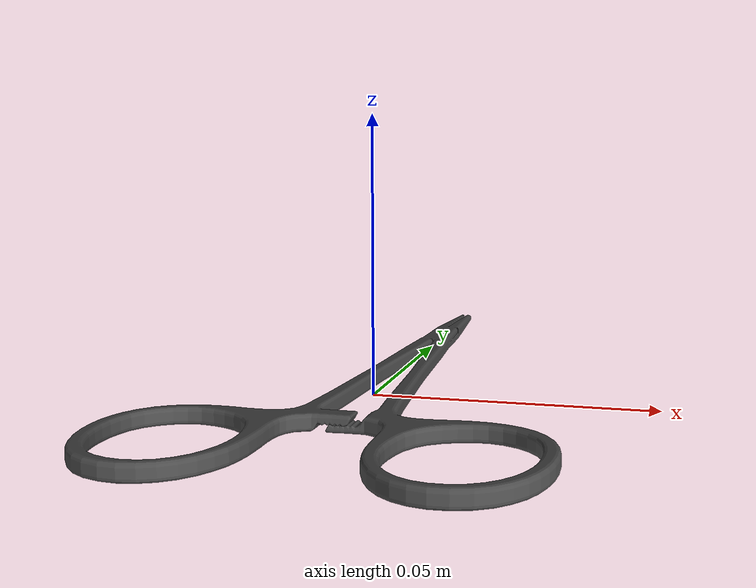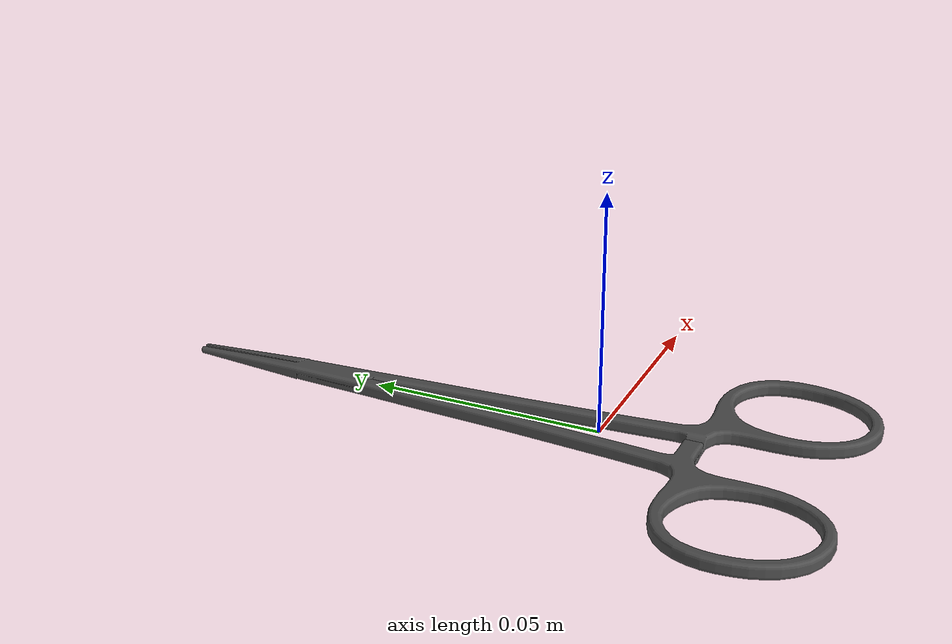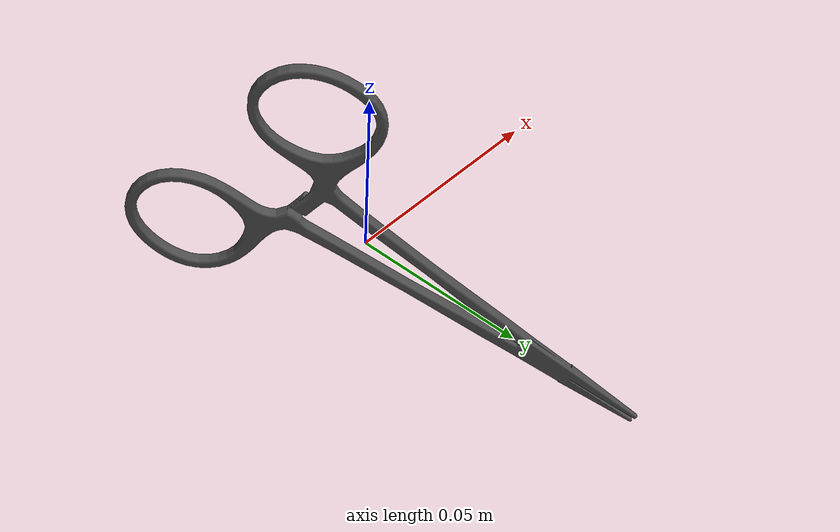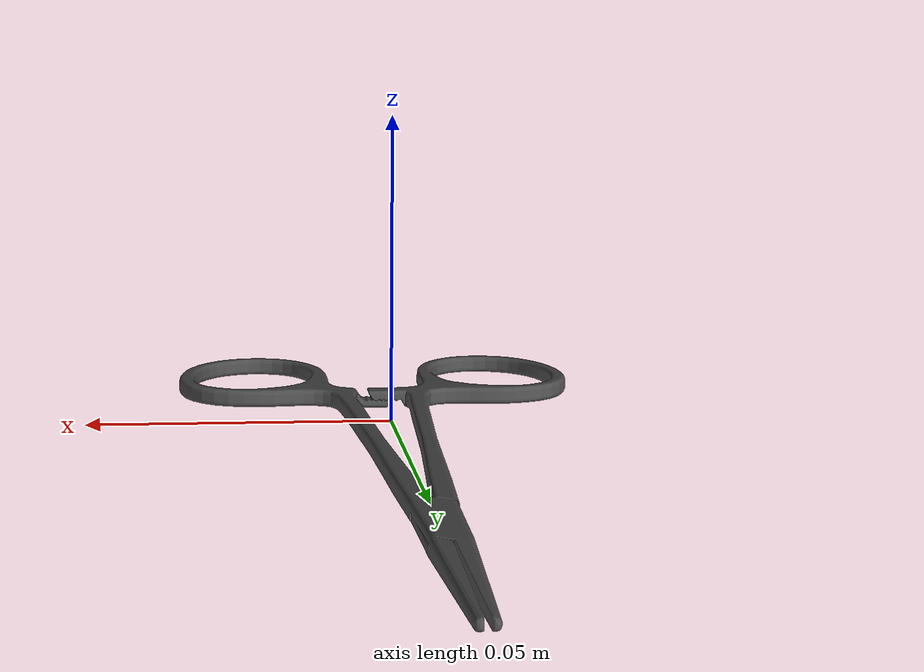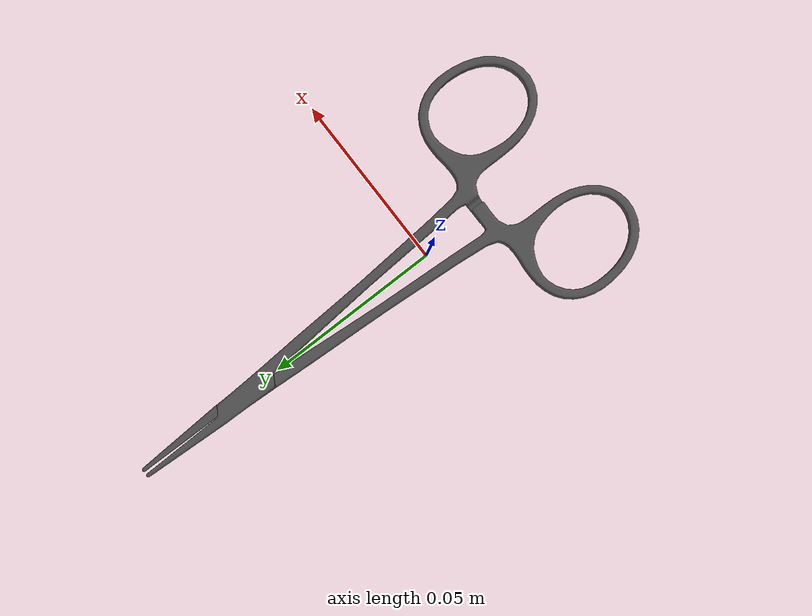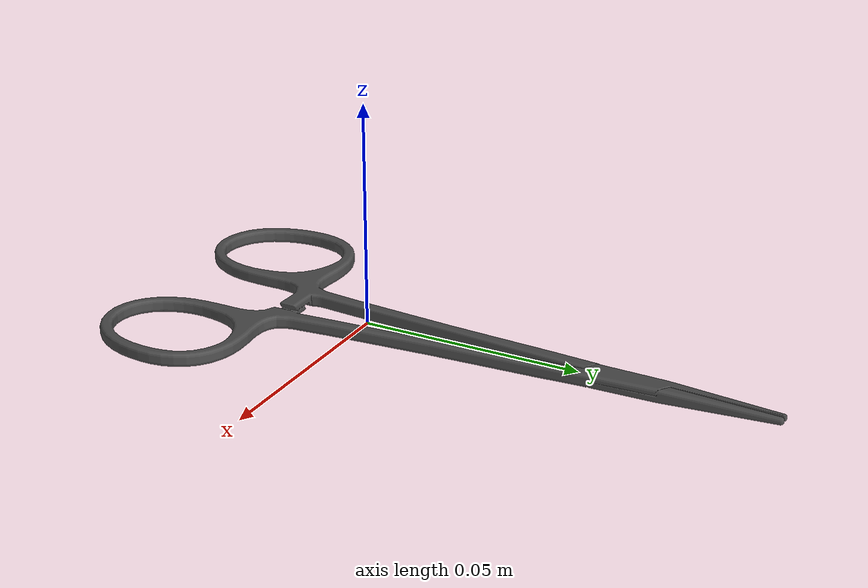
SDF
<?xml version="1.0"?>
<sdf version="1.9">
  <model name="needle_holder">
    <static>false</static>
    <self_collide>false</self_collide>

    <link name="link">
      <inertial>
        <mass>0.02918</mass>
        <inertia>
          <ixx>0.0000409868</ixx>
          <ixy>0.0000000000</ixy>
          <ixz>0.0000000000</ixz>
          <iyy>0.0000090192</iyy>
          <iyz>0.0000000000</iyz>
          <izz>0.0000480606</izz>
        </inertia>
      </inertial>

      <collision name="collision">
        <geometry>
          <mesh>
            <uri>model://thesis/DAE/NeedleHolder/NeedleHolderCollision20.dae</uri>
            <scale>1 1 1</scale>
          </mesh>
        </geometry>
        <surface>
          <contact>
            <ode>
              <max_vel>0.01</max_vel>
            </ode>
          </contact>
        </surface>
      </collision>

      <visual name="visual">
        <geometry>
          <mesh>
            <uri>model://thesis/DAE/NeedleHolder/NeedleHolder.dae</uri>
          </mesh>
        </geometry>
      </visual>
    </link>
  </model>
</sdf>
